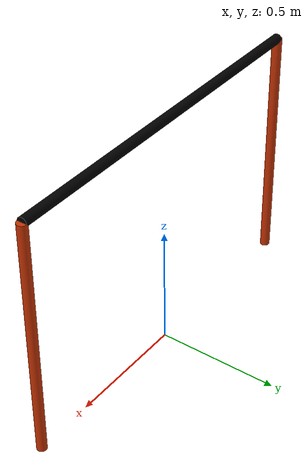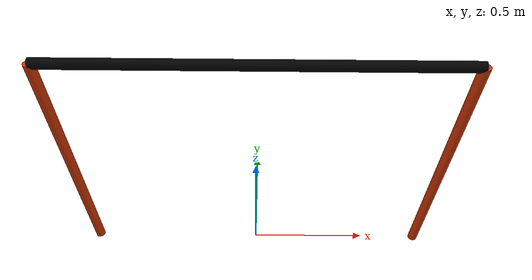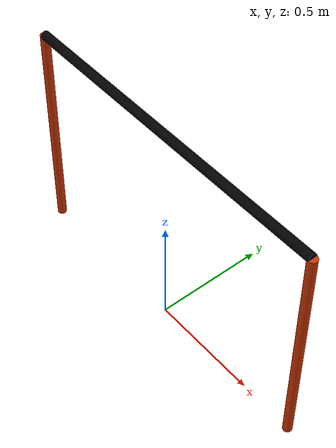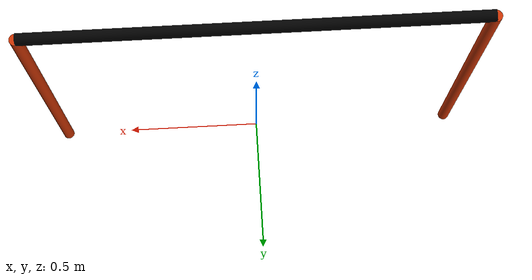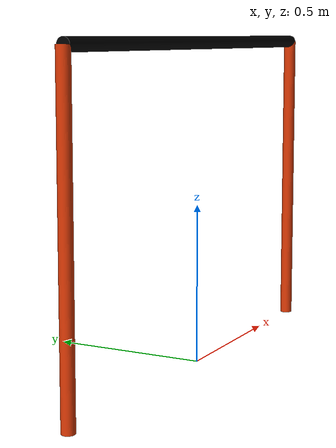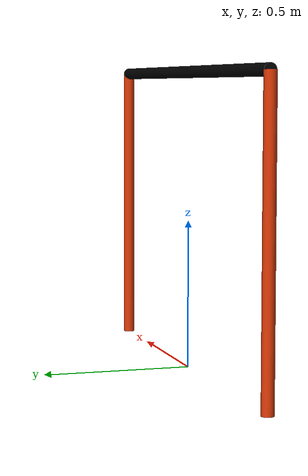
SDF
<?xml version='1.0' encoding='UTF-8'?>
<sdf version="1.6">
    <model name="orange_gate_1">
        <static>true</static>
  <link name="pool">
      <visual name="visual">
                <geometry>
                    <mesh>
          <uri>model://orange_gate_1/meshes/orange_gate.dae</uri>
                    </mesh>
                </geometry>
            </visual>
    <collision name="pool_collision">
      <geometry>
        <mesh>
          <uri>model://orange_gate_1/meshes/orange_gate.dae</uri>
          <scale>1 1 1</scale>
        </mesh>
      </geometry>
      <surface>
        <contact>
          <collide_without_contact>false</collide_without_contact>
          <collide_bitmask>0x01</collide_bitmask>
        </contact>
      </surface>
    </collision>
  </link>
    </model>
</sdf>
